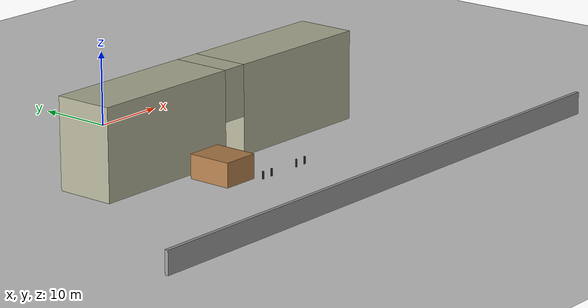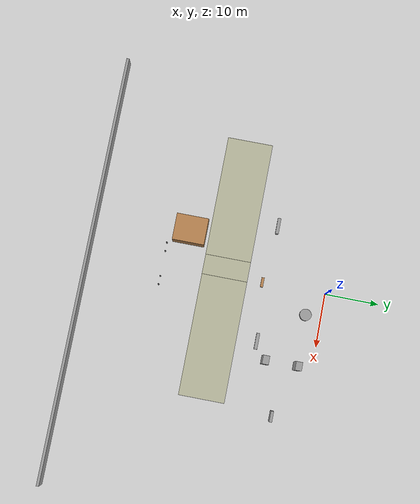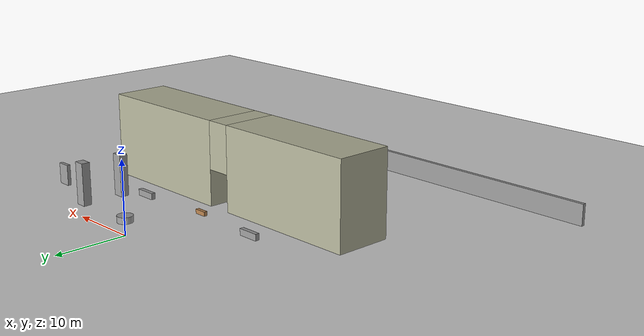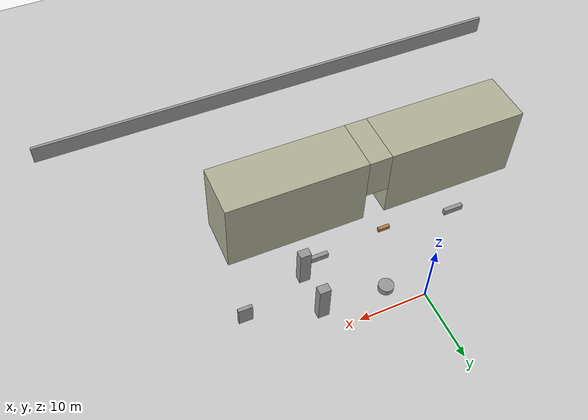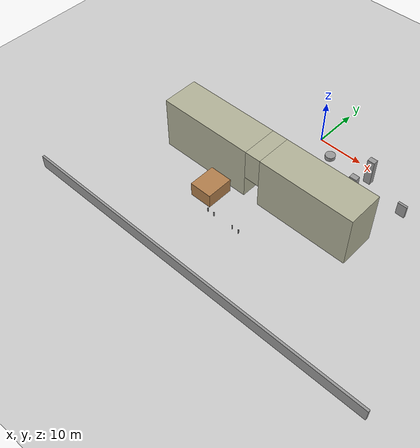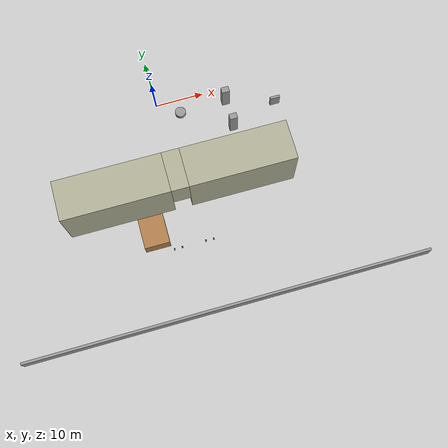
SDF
<sdf version="1.6">
 <world name="oxford_college">
  <include><uri>model://sun</uri></include>
  <include><uri>model://ground_plane</uri></include>
  <model name="front_south_a">
   <static>true</static>
   <pose>-12.375 -19.000 6.000 0 0 0.0000</pose>
   <link name="link">
    <collision name="collision">
     <geometry><box><size>21.250 8.000 12.000</size></box></geometry>
     <surface><friction><ode><mu>0.9</mu><mu2>0.9</mu2></ode></friction></surface>
    </collision>
    <visual name="visual">
     <geometry><box><size>21.250 8.000 12.000</size></box></geometry>
     <material>
      <script><uri>file://media/materials/scripts/gazebo.material</uri><name>Gazebo/Residential</name></script>
     </material>
    </visual>
   </link>
  </model>
  <model name="front_south_b">
   <static>true</static>
   <pose>12.375 -19.000 6.000 0 0 0.0000</pose>
   <link name="link">
    <collision name="collision">
     <geometry><box><size>21.250 8.000 12.000</size></box></geometry>
     <surface><friction><ode><mu>0.9</mu><mu2>0.9</mu2></ode></friction></surface>
    </collision>
    <visual name="visual">
     <geometry><box><size>21.250 8.000 12.000</size></box></geometry>
     <material>
      <script><uri>file://media/materials/scripts/gazebo.material</uri><name>Gazebo/Residential</name></script>
     </material>
    </visual>
   </link>
  </model>
  <model name="front_south_lintel">
   <static>true</static>
   <pose>0.000 -19.000 8.600 0 0 0.0000</pose>
   <link name="link">
    <collision name="collision">
     <geometry><box><size>3.500 8.000 6.800</size></box></geometry>
     <surface><friction><ode><mu>0.9</mu><mu2>0.9</mu2></ode></friction></surface>
    </collision>
    <visual name="visual">
     <geometry><box><size>3.500 8.000 6.800</size></box></geometry>
     <material>
      <script><uri>file://media/materials/scripts/gazebo.material</uri><name>Gazebo/Residential</name></script>
     </material>
    </visual>
   </link>
  </model>
  <model name="porters_lodge">
   <static>true</static>
   <pose>-7.000 -27.000 1.600 0 0 0.0000</pose>
   <link name="link">
    <collision name="collision">
     <geometry><box><size>5.000 6.000 3.200</size></box></geometry>
     <surface><friction><ode><mu>0.9</mu><mu2>0.9</mu2></ode></friction></surface>
    </collision>
    <visual name="visual">
     <geometry><box><size>5.000 6.000 3.200</size></box></geometry>
     <material>
      <script><uri>file://media/materials/scripts/gazebo.material</uri><name>Gazebo/Wood</name></script>
     </material>
    </visual>
   </link>
  </model>
  <model name="bollard_gate_0">
   <static>true</static>
   <pose>-4.000 -31.000 0.500 0 0 0</pose>
   <link name="link">
    <collision name="collision">
     <geometry><cylinder><radius>0.120</radius><length>1.000</length></cylinder></geometry>
    </collision>
    <visual name="visual">
     <geometry><cylinder><radius>0.120</radius><length>1.000</length></cylinder></geometry>
     <material>
      <script><uri>file://media/materials/scripts/gazebo.material</uri><name>Gazebo/Black</name></script>
     </material>
    </visual>
   </link>
  </model>
  <model name="bollard_gate_1">
   <static>true</static>
   <pose>-2.400 -31.000 0.500 0 0 0</pose>
   <link name="link">
    <collision name="collision">
     <geometry><cylinder><radius>0.120</radius><length>1.000</length></cylinder></geometry>
    </collision>
    <visual name="visual">
     <geometry><cylinder><radius>0.120</radius><length>1.000</length></cylinder></geometry>
     <material>
      <script><uri>file://media/materials/scripts/gazebo.material</uri><name>Gazebo/Black</name></script>
     </material>
    </visual>
   </link>
  </model>
  <model name="bollard_gate_2">
   <static>true</static>
   <pose>2.400 -31.000 0.500 0 0 0</pose>
   <link name="link">
    <collision name="collision">
     <geometry><cylinder><radius>0.120</radius><length>1.000</length></cylinder></geometry>
    </collision>
    <visual name="visual">
     <geometry><cylinder><radius>0.120</radius><length>1.000</length></cylinder></geometry>
     <material>
      <script><uri>file://media/materials/scripts/gazebo.material</uri><name>Gazebo/Black</name></script>
     </material>
    </visual>
   </link>
  </model>
  <model name="bollard_gate_3">
   <static>true</static>
   <pose>4.000 -31.000 0.500 0 0 0</pose>
   <link name="link">
    <collision name="collision">
     <geometry><cylinder><radius>0.120</radius><length>1.000</length></cylinder></geometry>
    </collision>
    <visual name="visual">
     <geometry><cylinder><radius>0.120</radius><length>1.000</length></cylinder></geometry>
     <material>
      <script><uri>file://media/materials/scripts/gazebo.material</uri><name>Gazebo/Black</name></script>
     </material>
    </visual>
   </link>
  </model>
  <model name="bike_rack_0">
   <static>true</static>
   <pose>-11.000 -11.000 0.450 0 0 0.0000</pose>
   <link name="link">
    <collision name="collision">
     <geometry><box><size>3.000 0.600 0.900</size></box></geometry>
     <surface><friction><ode><mu>0.9</mu><mu2>0.9</mu2></ode></friction></surface>
    </collision>
    <visual name="visual">
     <geometry><box><size>3.000 0.600 0.900</size></box></geometry>
     <material>
      <script><uri>file://media/materials/scripts/gazebo.material</uri><name>Gazebo/Grey</name></script>
     </material>
    </visual>
   </link>
  </model>
  <model name="bike_rack_1">
   <static>true</static>
   <pose>11.000 -11.000 0.450 0 0 0.0000</pose>
   <link name="link">
    <collision name="collision">
     <geometry><box><size>3.000 0.600 0.900</size></box></geometry>
     <surface><friction><ode><mu>0.9</mu><mu2>0.9</mu2></ode></friction></surface>
    </collision>
    <visual name="visual">
     <geometry><box><size>3.000 0.600 0.900</size></box></geometry>
     <material>
      <script><uri>file://media/materials/scripts/gazebo.material</uri><name>Gazebo/Grey</name></script>
     </material>
    </visual>
   </link>
  </model>
  <model name="bench_0">
   <static>true</static>
   <pose>0.000 -12.000 0.300 0 0 0.0000</pose>
   <link name="link">
    <collision name="collision">
     <geometry><box><size>1.800 0.500 0.600</size></box></geometry>
     <surface><friction><ode><mu>0.9</mu><mu2>0.9</mu2></ode></friction></surface>
    </collision>
    <visual name="visual">
     <geometry><box><size>1.800 0.500 0.600</size></box></geometry>
     <material>
      <script><uri>file://media/materials/scripts/gazebo.material</uri><name>Gazebo/Wood</name></script>
     </material>
    </visual>
   </link>
  </model>
  <model name="perim_s">
   <static>true</static>
   <pose>3.500 -45.000 1.500 0 0 0.0000</pose>
   <link name="link">
    <collision name="collision">
     <geometry><box><size>81.000 0.500 3.000</size></box></geometry>
     <surface><friction><ode><mu>0.9</mu><mu2>0.9</mu2></ode></friction></surface>
    </collision>
    <visual name="visual">
     <geometry><box><size>81.000 0.500 3.000</size></box></geometry>
     <material>
      <script><uri>file://media/materials/scripts/gazebo.material</uri><name>Gazebo/Grey</name></script>
     </material>
    </visual>
   </link>
  </model>
  <model name="hall_buttress_0">
   <static>true</static>
   <pose>14.200 -9.000 3.000 0 0 0.0000</pose>
   <link name="link">
    <collision name="collision">
     <geometry><box><size>1.600 1.200 6.000</size></box></geometry>
     <surface><friction><ode><mu>0.9</mu><mu2>0.9</mu2></ode></friction></surface>
    </collision>
    <visual name="visual">
     <geometry><box><size>1.600 1.200 6.000</size></box></geometry>
     <material>
      <script><uri>file://media/materials/scripts/gazebo.material</uri><name>Gazebo/Grey</name></script>
     </material>
    </visual>
   </link>
  </model>
  <model name="hall_buttress_1">
   <static>true</static>
   <pose>14.200 -3.000 3.000 0 0 0.0000</pose>
   <link name="link">
    <collision name="collision">
     <geometry><box><size>1.600 1.200 6.000</size></box></geometry>
     <surface><friction><ode><mu>0.9</mu><mu2>0.9</mu2></ode></friction></surface>
    </collision>
    <visual name="visual">
     <geometry><box><size>1.600 1.200 6.000</size></box></geometry>
     <material>
      <script><uri>file://media/materials/scripts/gazebo.material</uri><name>Gazebo/Grey</name></script>
     </material>
    </visual>
   </link>
  </model>
  <model name="quad_well">
   <static>true</static>
   <pose>4.500 -3.000 0.450 0 0 0</pose>
   <link name="link">
    <collision name="collision">
     <geometry><cylinder><radius>1.100</radius><length>0.900</length></cylinder></geometry>
    </collision>
    <visual name="visual">
     <geometry><cylinder><radius>1.100</radius><length>0.900</length></cylinder></geometry>
     <material>
      <script><uri>file://media/materials/scripts/gazebo.material</uri><name>Gazebo/Grey</name></script>
     </material>
    </visual>
   </link>
  </model>
  <model name="lane_arch_a">
   <static>true</static>
   <pose>24.000 -6.000 1.500 0 0 0.0000</pose>
   <link name="link">
    <collision name="collision">
     <geometry><box><size>2.000 0.500 3.000</size></box></geometry>
     <surface><friction><ode><mu>0.9</mu><mu2>0.9</mu2></ode></friction></surface>
    </collision>
    <visual name="visual">
     <geometry><box><size>2.000 0.500 3.000</size></box></geometry>
     <material>
      <script><uri>file://media/materials/scripts/gazebo.material</uri><name>Gazebo/Grey</name></script>
     </material>
    </visual>
   </link>
  </model>
 </world>
</sdf>
